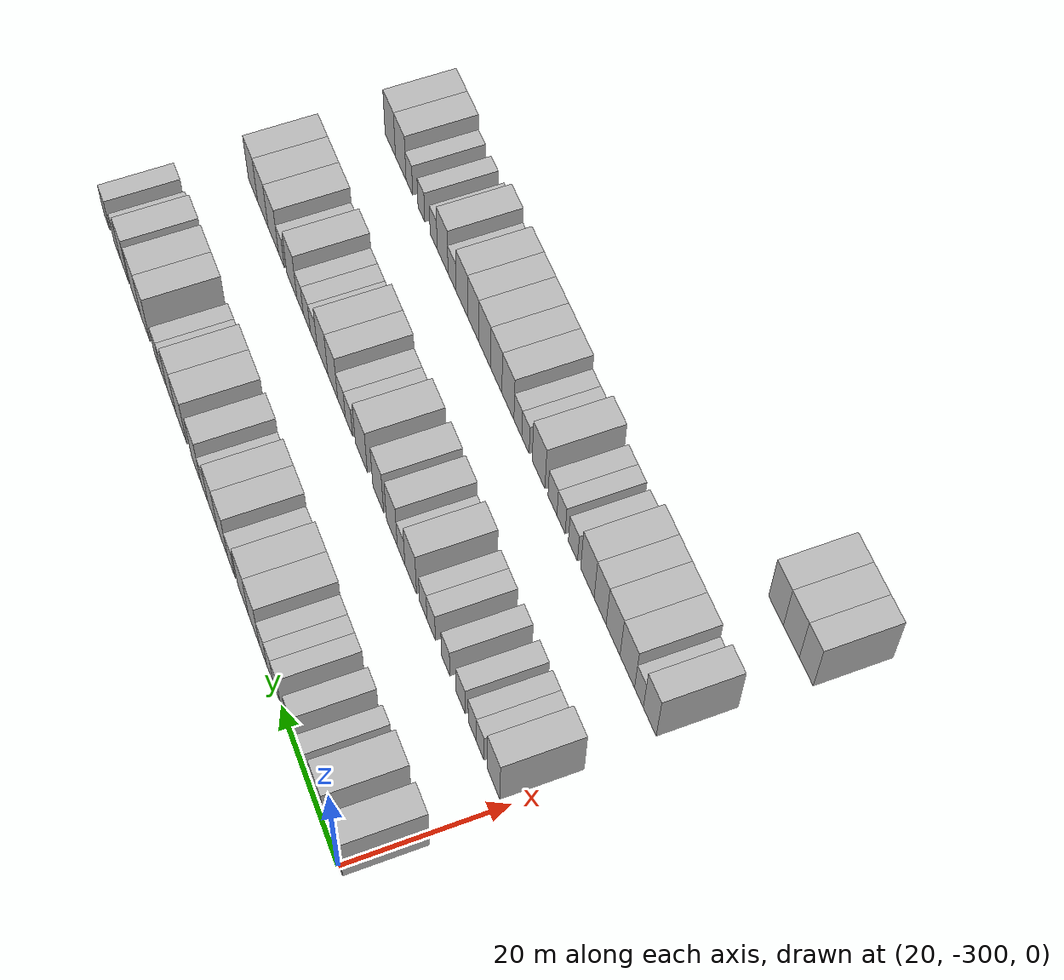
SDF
<sdf version="1.6">
 <world name="default">
  <model name="building_16">
   <static>1</static>
   <pose>25.0000 -299.3112 0 0.000000 0.000000 0.000000</pose>
   <link name="link">
    <pose>0 0 4.50 0 0 0</pose>
    <collision name="collision"><geometry><box><size>10.0000 3.8862 9.0000</size></box></geometry></collision>
    <visual name="visual">
     <cast_shadows>0</cast_shadows>
     <geometry><box><size>10.0000 3.8862 9.0000</size></box></geometry>
     <material>
      <script>
       <uri>model://HANNAS_wall/materials/scripts</uri>
       <uri>model://HANNAS_wall/materials/textures</uri>
       <name>vrc/HANNAS_wall</name>
      </script>
     </material>
    </visual>
   </link>
  </model>
  <model name="building_17">
   <static>1</static>
   <pose>25.0000 -293.1671 0 0.000000 0.000000 0.000000</pose>
   <link name="link">
    <pose>0 0 4.50 0 0 0</pose>
    <collision name="collision"><geometry><box><size>10.0000 4.4021 9.0000</size></box></geometry></collision>
    <visual name="visual">
     <cast_shadows>0</cast_shadows>
     <geometry><box><size>10.0000 4.4021 9.0000</size></box></geometry>
     <material>
      <script>
       <uri>model://HANNAS_wall/materials/scripts</uri>
       <uri>model://HANNAS_wall/materials/textures</uri>
       <name>vrc/HANNAS_wall</name>
      </script>
     </material>
    </visual>
   </link>
  </model>
  <model name="building_18">
   <static>1</static>
   <pose>25.0000 -287.7111 0 0.000000 0.000000 0.000000</pose>
   <link name="link">
    <pose>0 0 3.00 0 0 0</pose>
    <collision name="collision"><geometry><box><size>10.0000 2.5098 6.0000</size></box></geometry></collision>
    <visual name="visual">
     <cast_shadows>0</cast_shadows>
     <geometry><box><size>10.0000 2.5098 6.0000</size></box></geometry>
     <material>
      <script>
       <uri>model://HANNAS_wall/materials/scripts</uri>
       <uri>model://HANNAS_wall/materials/textures</uri>
       <name>vrc/HANNAS_wall</name>
      </script>
     </material>
    </visual>
   </link>
  </model>
  <model name="building_19">
   <static>1</static>
   <pose>25.0000 -283.0220 0 0.000000 0.000000 0.000000</pose>
   <link name="link">
    <pose>0 0 3.00 0 0 0</pose>
    <collision name="collision"><geometry><box><size>10.0000 2.8683 6.0000</size></box></geometry></collision>
    <visual name="visual">
     <cast_shadows>0</cast_shadows>
     <geometry><box><size>10.0000 2.8683 6.0000</size></box></geometry>
     <material>
      <script>
       <uri>model://HANNAS_wall/materials/scripts</uri>
       <uri>model://HANNAS_wall/materials/textures</uri>
       <name>vrc/HANNAS_wall</name>
      </script>
     </material>
    </visual>
   </link>
  </model>
  <model name="building_20">
   <static>1</static>
   <pose>25.0000 -278.3360 0 0.000000 0.000000 0.000000</pose>
   <link name="link">
    <pose>0 0 3.00 0 0 0</pose>
    <collision name="collision"><geometry><box><size>10.0000 2.5036 6.0000</size></box></geometry></collision>
    <visual name="visual">
     <cast_shadows>0</cast_shadows>
     <geometry><box><size>10.0000 2.5036 6.0000</size></box></geometry>
     <material>
      <script>
       <uri>model://HANNAS_wall/materials/scripts</uri>
       <uri>model://HANNAS_wall/materials/textures</uri>
       <name>vrc/HANNAS_wall</name>
      </script>
     </material>
    </visual>
   </link>
  </model>
  <model name="building_21">
   <static>1</static>
   <pose>25.0000 -275.8799 0 0.000000 0.000000 0.000000</pose>
   <link name="link">
    <pose>0 0 3.00 0 0 0</pose>
    <collision name="collision"><geometry><box><size>10.0000 2.4085 6.0000</size></box></geometry></collision>
    <visual name="visual">
     <cast_shadows>0</cast_shadows>
     <geometry><box><size>10.0000 2.4085 6.0000</size></box></geometry>
     <material>
      <script>
       <uri>model://HANNAS_wall/materials/scripts</uri>
       <uri>model://HANNAS_wall/materials/textures</uri>
       <name>vrc/HANNAS_wall</name>
      </script>
     </material>
    </visual>
   </link>
  </model>
  <model name="building_22">
   <static>1</static>
   <pose>25.0000 -273.3234 0 0.000000 0.000000 0.000000</pose>
   <link name="link">
    <pose>0 0 3.00 0 0 0</pose>
    <collision name="collision"><geometry><box><size>10.0000 2.7045 6.0000</size></box></geometry></collision>
    <visual name="visual">
     <cast_shadows>0</cast_shadows>
     <geometry><box><size>10.0000 2.7045 6.0000</size></box></geometry>
     <material>
      <script>
       <uri>model://HANNAS_wall/materials/scripts</uri>
       <uri>model://HANNAS_wall/materials/textures</uri>
       <name>vrc/HANNAS_wall</name>
      </script>
     </material>
    </visual>
   </link>
  </model>
  <model name="building_23">
   <static>1</static>
   <pose>25.0000 -269.9088 0 0.000000 0.000000 0.000000</pose>
   <link name="link">
    <pose>0 0 4.50 0 0 0</pose>
    <collision name="collision"><geometry><box><size>10.0000 4.1248 9.0000</size></box></geometry></collision>
    <visual name="visual">
     <cast_shadows>0</cast_shadows>
     <geometry><box><size>10.0000 4.1248 9.0000</size></box></geometry>
     <material>
      <script>
       <uri>model://HANNAS_wall/materials/scripts</uri>
       <uri>model://HANNAS_wall/materials/textures</uri>
       <name>vrc/HANNAS_wall</name>
      </script>
     </material>
    </visual>
   </link>
  </model>
  <model name="building_24">
   <static>1</static>
   <pose>25.0000 -265.8082 0 0.000000 0.000000 0.000000</pose>
   <link name="link">
    <pose>0 0 4.50 0 0 0</pose>
    <collision name="collision"><geometry><box><size>10.0000 4.0764 9.0000</size></box></geometry></collision>
    <visual name="visual">
     <cast_shadows>0</cast_shadows>
     <geometry><box><size>10.0000 4.0764 9.0000</size></box></geometry>
     <material>
      <script>
       <uri>model://HANNAS_wall/materials/scripts</uri>
       <uri>model://HANNAS_wall/materials/textures</uri>
       <name>vrc/HANNAS_wall</name>
      </script>
     </material>
    </visual>
   </link>
  </model>
  <model name="building_25">
   <static>1</static>
   <pose>25.0000 -261.3336 0 0.000000 0.000000 0.000000</pose>
   <link name="link">
    <pose>0 0 3.00 0 0 0</pose>
    <collision name="collision"><geometry><box><size>10.0000 2.8729 6.0000</size></box></geometry></collision>
    <visual name="visual">
     <cast_shadows>0</cast_shadows>
     <geometry><box><size>10.0000 2.8729 6.0000</size></box></geometry>
     <material>
      <script>
       <uri>model://HANNAS_wall/materials/scripts</uri>
       <uri>model://HANNAS_wall/materials/textures</uri>
       <name>vrc/HANNAS_wall</name>
      </script>
     </material>
    </visual>
   </link>
  </model>
  <model name="building_26">
   <static>1</static>
   <pose>25.0000 -257.8863 0 0.000000 0.000000 0.000000</pose>
   <link name="link">
    <pose>0 0 4.50 0 0 0</pose>
    <collision name="collision"><geometry><box><size>10.0000 4.0216 9.0000</size></box></geometry></collision>
    <visual name="visual">
     <cast_shadows>0</cast_shadows>
     <geometry><box><size>10.0000 4.0216 9.0000</size></box></geometry>
     <material>
      <script>
       <uri>model://HANNAS_wall/materials/scripts</uri>
       <uri>model://HANNAS_wall/materials/textures</uri>
       <name>vrc/HANNAS_wall</name>
      </script>
     </material>
    </visual>
   </link>
  </model>
  <model name="building_27">
   <static>1</static>
   <pose>25.0000 -254.0091 0 0.000000 0.000000 0.000000</pose>
   <link name="link">
    <pose>0 0 4.50 0 0 0</pose>
    <collision name="collision"><geometry><box><size>10.0000 3.7329 9.0000</size></box></geometry></collision>
    <visual name="visual">
     <cast_shadows>0</cast_shadows>
     <geometry><box><size>10.0000 3.7329 9.0000</size></box></geometry>
     <material>
      <script>
       <uri>model://HANNAS_wall/materials/scripts</uri>
       <uri>model://HANNAS_wall/materials/textures</uri>
       <name>vrc/HANNAS_wall</name>
      </script>
     </material>
    </visual>
   </link>
  </model>
  <model name="building_28">
   <static>1</static>
   <pose>25.0000 -250.6905 0 0.000000 0.000000 0.000000</pose>
   <link name="link">
    <pose>0 0 3.00 0 0 0</pose>
    <collision name="collision"><geometry><box><size>10.0000 2.9043 6.0000</size></box></geometry></collision>
    <visual name="visual">
     <cast_shadows>0</cast_shadows>
     <geometry><box><size>10.0000 2.9043 6.0000</size></box></geometry>
     <material>
      <script>
       <uri>model://HANNAS_wall/materials/scripts</uri>
       <uri>model://HANNAS_wall/materials/textures</uri>
       <name>vrc/HANNAS_wall</name>
      </script>
     </material>
    </visual>
   </link>
  </model>
  <model name="building_29">
   <static>1</static>
   <pose>25.0000 -247.3382 0 0.000000 0.000000 0.000000</pose>
   <link name="link">
    <pose>0 0 4.50 0 0 0</pose>
    <collision name="collision"><geometry><box><size>10.0000 3.8004 9.0000</size></box></geometry></collision>
    <visual name="visual">
     <cast_shadows>0</cast_shadows>
     <geometry><box><size>10.0000 3.8004 9.0000</size></box></geometry>
     <material>
      <script>
       <uri>model://HANNAS_wall/materials/scripts</uri>
       <uri>model://HANNAS_wall/materials/textures</uri>
       <name>vrc/HANNAS_wall</name>
      </script>
     </material>
    </visual>
   </link>
  </model>
  <model name="building_30">
   <static>1</static>
   <pose>25.0000 -241.2113 0 0.000000 0.000000 0.000000</pose>
   <link name="link">
    <pose>0 0 4.50 0 0 0</pose>
    <collision name="collision"><geometry><box><size>10.0000 4.4534 9.0000</size></box></geometry></collision>
    <visual name="visual">
     <cast_shadows>0</cast_shadows>
     <geometry><box><size>10.0000 4.4534 9.0000</size></box></geometry>
     <material>
      <script>
       <uri>model://HANNAS_wall/materials/scripts</uri>
       <uri>model://HANNAS_wall/materials/textures</uri>
       <name>vrc/HANNAS_wall</name>
      </script>
     </material>
    </visual>
   </link>
  </model>
  <model name="building_31">
   <static>1</static>
   <pose>25.0000 -237.0478 0 0.000000 0.000000 0.000000</pose>
   <link name="link">
    <pose>0 0 4.50 0 0 0</pose>
    <collision name="collision"><geometry><box><size>10.0000 3.8735 9.0000</size></box></geometry></collision>
    <visual name="visual">
     <cast_shadows>0</cast_shadows>
     <geometry><box><size>10.0000 3.8735 9.0000</size></box></geometry>
     <material>
      <script>
       <uri>model://HANNAS_wall/materials/scripts</uri>
       <uri>model://HANNAS_wall/materials/textures</uri>
       <name>vrc/HANNAS_wall</name>
      </script>
     </material>
    </visual>
   </link>
  </model>
  <model name="building_32">
   <static>1</static>
   <pose>25.0000 -233.6529 0 0.000000 0.000000 0.000000</pose>
   <link name="link">
    <pose>0 0 3.00 0 0 0</pose>
    <collision name="collision"><geometry><box><size>10.0000 2.9162 6.0000</size></box></geometry></collision>
    <visual name="visual">
     <cast_shadows>0</cast_shadows>
     <geometry><box><size>10.0000 2.9162 6.0000</size></box></geometry>
     <material>
      <script>
       <uri>model://HANNAS_wall/materials/scripts</uri>
       <uri>model://HANNAS_wall/materials/textures</uri>
       <name>vrc/HANNAS_wall</name>
      </script>
     </material>
    </visual>
   </link>
  </model>
  <model name="building_33">
   <static>1</static>
   <pose>25.0000 -230.9695 0 0.000000 0.000000 0.000000</pose>
   <link name="link">
    <pose>0 0 3.00 0 0 0</pose>
    <collision name="collision"><geometry><box><size>10.0000 2.4507 6.0000</size></box></geometry></collision>
    <visual name="visual">
     <cast_shadows>0</cast_shadows>
     <geometry><box><size>10.0000 2.4507 6.0000</size></box></geometry>
     <material>
      <script>
       <uri>model://HANNAS_wall/materials/scripts</uri>
       <uri>model://HANNAS_wall/materials/textures</uri>
       <name>vrc/HANNAS_wall</name>
      </script>
     </material>
    </visual>
   </link>
  </model>
  <model name="building_34">
   <static>1</static>
   <pose>25.0000 -225.7912 0 0.000000 0.000000 0.000000</pose>
   <link name="link">
    <pose>0 0 4.50 0 0 0</pose>
    <collision name="collision"><geometry><box><size>10.0000 3.9059 9.0000</size></box></geometry></collision>
    <visual name="visual">
     <cast_shadows>0</cast_shadows>
     <geometry><box><size>10.0000 3.9059 9.0000</size></box></geometry>
     <material>
      <script>
       <uri>model://HANNAS_wall/materials/scripts</uri>
       <uri>model://HANNAS_wall/materials/textures</uri>
       <name>vrc/HANNAS_wall</name>
      </script>
     </material>
    </visual>
   </link>
  </model>
  <model name="building_35">
   <static>1</static>
   <pose>25.0000 -221.6603 0 0.000000 0.000000 0.000000</pose>
   <link name="link">
    <pose>0 0 4.50 0 0 0</pose>
    <collision name="collision"><geometry><box><size>10.0000 4.3558 9.0000</size></box></geometry></collision>
    <visual name="visual">
     <cast_shadows>0</cast_shadows>
     <geometry><box><size>10.0000 4.3558 9.0000</size></box></geometry>
     <material>
      <script>
       <uri>model://HANNAS_wall/materials/scripts</uri>
       <uri>model://HANNAS_wall/materials/textures</uri>
       <name>vrc/HANNAS_wall</name>
      </script>
     </material>
    </visual>
   </link>
  </model>
  <model name="building_36">
   <static>1</static>
   <pose>25.0000 -216.5429 0 0.000000 0.000000 0.000000</pose>
   <link name="link">
    <pose>0 0 4.50 0 0 0</pose>
    <collision name="collision"><geometry><box><size>10.0000 3.8790 9.0000</size></box></geometry></collision>
    <visual name="visual">
     <cast_shadows>0</cast_shadows>
     <geometry><box><size>10.0000 3.8790 9.0000</size></box></geometry>
     <material>
      <script>
       <uri>model://HANNAS_wall/materials/scripts</uri>
       <uri>model://HANNAS_wall/materials/textures</uri>
       <name>vrc/HANNAS_wall</name>
      </script>
     </material>
    </visual>
   </link>
  </model>
  <model name="building_37">
   <static>1</static>
   <pose>25.0000 -213.1179 0 0.000000 0.000000 0.000000</pose>
   <link name="link">
    <pose>0 0 3.00 0 0 0</pose>
    <collision name="collision"><geometry><box><size>10.0000 2.9709 6.0000</size></box></geometry></collision>
    <visual name="visual">
     <cast_shadows>0</cast_shadows>
     <geometry><box><size>10.0000 2.9709 6.0000</size></box></geometry>
     <material>
      <script>
       <uri>model://HANNAS_wall/materials/scripts</uri>
       <uri>model://HANNAS_wall/materials/textures</uri>
       <name>vrc/HANNAS_wall</name>
      </script>
     </material>
    </visual>
   </link>
  </model>
  <model name="building_38">
   <static>1</static>
   <pose>25.0000 -208.2390 0 0.000000 0.000000 0.000000</pose>
   <link name="link">
    <pose>0 0 3.00 0 0 0</pose>
    <collision name="collision"><geometry><box><size>10.0000 2.7869 6.0000</size></box></geometry></collision>
    <visual name="visual">
     <cast_shadows>0</cast_shadows>
     <geometry><box><size>10.0000 2.7869 6.0000</size></box></geometry>
     <material>
      <script>
       <uri>model://HANNAS_wall/materials/scripts</uri>
       <uri>model://HANNAS_wall/materials/textures</uri>
       <name>vrc/HANNAS_wall</name>
      </script>
     </material>
    </visual>
   </link>
  </model>
  <model name="building_186">
   <static>1</static>
   <pose>44.0000 -297.0724 0 0.000000 0.000000 0.000000</pose>
   <link name="link">
    <pose>0 0 4.50 0 0 0</pose>
    <collision name="collision"><geometry><box><size>10.0000 3.9148 9.0000</size></box></geometry></collision>
    <visual name="visual">
     <cast_shadows>0</cast_shadows>
     <geometry><box><size>10.0000 3.9148 9.0000</size></box></geometry>
     <material>
      <script>
       <uri>model://HANNAS_wall/materials/scripts</uri>
       <uri>model://HANNAS_wall/materials/textures</uri>
       <name>vrc/HANNAS_wall</name>
      </script>
     </material>
    </visual>
   </link>
  </model>
  <model name="building_187">
   <static>1</static>
   <pose>44.0000 -292.9127 0 0.000000 0.000000 0.000000</pose>
   <link name="link">
    <pose>0 0 3.00 0 0 0</pose>
    <collision name="collision"><geometry><box><size>10.0000 2.4045 6.0000</size></box></geometry></collision>
    <visual name="visual">
     <cast_shadows>0</cast_shadows>
     <geometry><box><size>10.0000 2.4045 6.0000</size></box></geometry>
     <material>
      <script>
       <uri>model://HANNAS_wall/materials/scripts</uri>
       <uri>model://HANNAS_wall/materials/textures</uri>
       <name>vrc/HANNAS_wall</name>
      </script>
     </material>
    </visual>
   </link>
  </model>
  <model name="building_188">
   <static>1</static>
   <pose>44.0000 -290.4183 0 0.000000 0.000000 0.000000</pose>
   <link name="link">
    <pose>0 0 3.00 0 0 0</pose>
    <collision name="collision"><geometry><box><size>10.0000 2.5843 6.0000</size></box></geometry></collision>
    <visual name="visual">
     <cast_shadows>0</cast_shadows>
     <geometry><box><size>10.0000 2.5843 6.0000</size></box></geometry>
     <material>
      <script>
       <uri>model://HANNAS_wall/materials/scripts</uri>
       <uri>model://HANNAS_wall/materials/textures</uri>
       <name>vrc/HANNAS_wall</name>
      </script>
     </material>
    </visual>
   </link>
  </model>
  <model name="building_189">
   <static>1</static>
   <pose>44.0000 -286.6588 0 0.000000 0.000000 0.000000</pose>
   <link name="link">
    <pose>0 0 3.00 0 0 0</pose>
    <collision name="collision"><geometry><box><size>10.0000 2.9347 6.0000</size></box></geometry></collision>
    <visual name="visual">
     <cast_shadows>0</cast_shadows>
     <geometry><box><size>10.0000 2.9347 6.0000</size></box></geometry>
     <material>
      <script>
       <uri>model://HANNAS_wall/materials/scripts</uri>
       <uri>model://HANNAS_wall/materials/textures</uri>
       <name>vrc/HANNAS_wall</name>
      </script>
     </material>
    </visual>
   </link>
  </model>
  <model name="building_190">
   <static>1</static>
   <pose>44.0000 -281.8117 0 0.000000 0.000000 0.000000</pose>
   <link name="link">
    <pose>0 0 3.00 0 0 0</pose>
    <collision name="collision"><geometry><box><size>10.0000 2.7596 6.0000</size></box></geometry></collision>
    <visual name="visual">
     <cast_shadows>0</cast_shadows>
     <geometry><box><size>10.0000 2.7596 6.0000</size></box></geometry>
     <material>
      <script>
       <uri>model://HANNAS_wall/materials/scripts</uri>
       <uri>model://HANNAS_wall/materials/textures</uri>
       <name>vrc/HANNAS_wall</name>
      </script>
     </material>
    </visual>
   </link>
  </model>
  <model name="building_191">
   <static>1</static>
   <pose>44.0000 -277.0166 0 0.000000 0.000000 0.000000</pose>
   <link name="link">
    <pose>0 0 3.00 0 0 0</pose>
    <collision name="collision"><geometry><box><size>10.0000 2.8305 6.0000</size></box></geometry></collision>
    <visual name="visual">
     <cast_shadows>0</cast_shadows>
     <geometry><box><size>10.0000 2.8305 6.0000</size></box></geometry>
     <material>
      <script>
       <uri>model://HANNAS_wall/materials/scripts</uri>
       <uri>model://HANNAS_wall/materials/textures</uri>
       <name>vrc/HANNAS_wall</name>
      </script>
     </material>
    </visual>
   </link>
  </model>
  <model name="building_192">
   <static>1</static>
   <pose>44.0000 -274.3467 0 0.000000 0.000000 0.000000</pose>
   <link name="link">
    <pose>0 0 3.00 0 0 0</pose>
    <collision name="collision"><geometry><box><size>10.0000 2.5095 6.0000</size></box></geometry></collision>
    <visual name="visual">
     <cast_shadows>0</cast_shadows>
     <geometry><box><size>10.0000 2.5095 6.0000</size></box></geometry>
     <material>
      <script>
       <uri>model://HANNAS_wall/materials/scripts</uri>
       <uri>model://HANNAS_wall/materials/textures</uri>
       <name>vrc/HANNAS_wall</name>
      </script>
     </material>
    </visual>
   </link>
  </model>
  <model name="building_193">
   <static>1</static>
   <pose>44.0000 -270.0908 0 0.000000 0.000000 0.000000</pose>
   <link name="link">
    <pose>0 0 4.50 0 0 0</pose>
    <collision name="collision"><geometry><box><size>10.0000 4.0023 9.0000</size></box></geometry></collision>
    <visual name="visual">
     <cast_shadows>0</cast_shadows>
     <geometry><box><size>10.0000 4.0023 9.0000</size></box></geometry>
     <material>
      <script>
       <uri>model://HANNAS_wall/materials/scripts</uri>
       <uri>model://HANNAS_wall/materials/textures</uri>
       <name>vrc/HANNAS_wall</name>
      </script>
     </material>
    </visual>
   </link>
  </model>
  <model name="building_194">
   <static>1</static>
   <pose>44.0000 -266.7684 0 0.000000 0.000000 0.000000</pose>
   <link name="link">
    <pose>0 0 3.00 0 0 0</pose>
    <collision name="collision"><geometry><box><size>10.0000 2.6424 6.0000</size></box></geometry></collision>
    <visual name="visual">
     <cast_shadows>0</cast_shadows>
     <geometry><box><size>10.0000 2.6424 6.0000</size></box></geometry>
     <material>
      <script>
       <uri>model://HANNAS_wall/materials/scripts</uri>
       <uri>model://HANNAS_wall/materials/textures</uri>
       <name>vrc/HANNAS_wall</name>
      </script>
     </material>
    </visual>
   </link>
  </model>
  <model name="building_195">
   <static>1</static>
   <pose>44.0000 -263.5524 0 0.000000 0.000000 0.000000</pose>
   <link name="link">
    <pose>0 0 4.50 0 0 0</pose>
    <collision name="collision"><geometry><box><size>10.0000 3.7895 9.0000</size></box></geometry></collision>
    <visual name="visual">
     <cast_shadows>0</cast_shadows>
     <geometry><box><size>10.0000 3.7895 9.0000</size></box></geometry>
     <material>
      <script>
       <uri>model://HANNAS_wall/materials/scripts</uri>
       <uri>model://HANNAS_wall/materials/textures</uri>
       <name>vrc/HANNAS_wall</name>
      </script>
     </material>
    </visual>
   </link>
  </model>
  <model name="building_196">
   <static>1</static>
   <pose>44.0000 -258.7288 0 0.000000 0.000000 0.000000</pose>
   <link name="link">
    <pose>0 0 4.50 0 0 0</pose>
    <collision name="collision"><geometry><box><size>10.0000 3.8577 9.0000</size></box></geometry></collision>
    <visual name="visual">
     <cast_shadows>0</cast_shadows>
     <geometry><box><size>10.0000 3.8577 9.0000</size></box></geometry>
     <material>
      <script>
       <uri>model://HANNAS_wall/materials/scripts</uri>
       <uri>model://HANNAS_wall/materials/textures</uri>
       <name>vrc/HANNAS_wall</name>
      </script>
     </material>
    </visual>
   </link>
  </model>
  <model name="building_197">
   <static>1</static>
   <pose>44.0000 -252.6129 0 0.000000 0.000000 0.000000</pose>
   <link name="link">
    <pose>0 0 4.50 0 0 0</pose>
    <collision name="collision"><geometry><box><size>10.0000 4.3741 9.0000</size></box></geometry></collision>
    <visual name="visual">
     <cast_shadows>0</cast_shadows>
     <geometry><box><size>10.0000 4.3741 9.0000</size></box></geometry>
     <material>
      <script>
       <uri>model://HANNAS_wall/materials/scripts</uri>
       <uri>model://HANNAS_wall/materials/textures</uri>
       <name>vrc/HANNAS_wall</name>
      </script>
     </material>
    </visual>
   </link>
  </model>
  <model name="building_198">
   <static>1</static>
   <pose>44.0000 -248.0777 0 0.000000 0.000000 0.000000</pose>
   <link name="link">
    <pose>0 0 3.00 0 0 0</pose>
    <collision name="collision"><geometry><box><size>10.0000 2.6964 6.0000</size></box></geometry></collision>
    <visual name="visual">
     <cast_shadows>0</cast_shadows>
     <geometry><box><size>10.0000 2.6964 6.0000</size></box></geometry>
     <material>
      <script>
       <uri>model://HANNAS_wall/materials/scripts</uri>
       <uri>model://HANNAS_wall/materials/textures</uri>
       <name>vrc/HANNAS_wall</name>
      </script>
     </material>
    </visual>
   </link>
  </model>
  <model name="building_199">
   <static>1</static>
   <pose>44.0000 -245.2805 0 0.000000 0.000000 0.000000</pose>
   <link name="link">
    <pose>0 0 3.00 0 0 0</pose>
    <collision name="collision"><geometry><box><size>10.0000 2.8980 6.0000</size></box></geometry></collision>
    <visual name="visual">
     <cast_shadows>0</cast_shadows>
     <geometry><box><size>10.0000 2.8980 6.0000</size></box></geometry>
     <material>
      <script>
       <uri>model://HANNAS_wall/materials/scripts</uri>
       <uri>model://HANNAS_wall/materials/textures</uri>
       <name>vrc/HANNAS_wall</name>
      </script>
     </material>
    </visual>
   </link>
  </model>
  <model name="building_200">
   <static>1</static>
   <pose>44.0000 -241.9789 0 0.000000 0.000000 0.000000</pose>
   <link name="link">
    <pose>0 0 4.50 0 0 0</pose>
    <collision name="collision"><geometry><box><size>10.0000 3.7052 9.0000</size></box></geometry></collision>
    <visual name="visual">
     <cast_shadows>0</cast_shadows>
     <geometry><box><size>10.0000 3.7052 9.0000</size></box></geometry>
     <material>
      <script>
       <uri>model://HANNAS_wall/materials/scripts</uri>
       <uri>model://HANNAS_wall/materials/textures</uri>
       <name>vrc/HANNAS_wall</name>
      </script>
     </material>
    </visual>
   </link>
  </model>
  <model name="building_201">
   <static>1</static>
   <pose>44.0000 -238.1013 0 0.000000 0.000000 0.000000</pose>
   <link name="link">
    <pose>0 0 4.50 0 0 0</pose>
    <collision name="collision"><geometry><box><size>10.0000 4.0499 9.0000</size></box></geometry></collision>
    <visual name="visual">
     <cast_shadows>0</cast_shadows>
     <geometry><box><size>10.0000 4.0499 9.0000</size></box></geometry>
     <material>
      <script>
       <uri>model://HANNAS_wall/materials/scripts</uri>
       <uri>model://HANNAS_wall/materials/textures</uri>
       <name>vrc/HANNAS_wall</name>
      </script>
     </material>
    </visual>
   </link>
  </model>
  <model name="building_202">
   <static>1</static>
   <pose>44.0000 -234.7181 0 0.000000 0.000000 0.000000</pose>
   <link name="link">
    <pose>0 0 3.00 0 0 0</pose>
    <collision name="collision"><geometry><box><size>10.0000 2.7165 6.0000</size></box></geometry></collision>
    <visual name="visual">
     <cast_shadows>0</cast_shadows>
     <geometry><box><size>10.0000 2.7165 6.0000</size></box></geometry>
     <material>
      <script>
       <uri>model://HANNAS_wall/materials/scripts</uri>
       <uri>model://HANNAS_wall/materials/textures</uri>
       <name>vrc/HANNAS_wall</name>
      </script>
     </material>
    </visual>
   </link>
  </model>
  <model name="building_203">
   <static>1</static>
   <pose>44.0000 -231.9727 0 0.000000 0.000000 0.000000</pose>
   <link name="link">
    <pose>0 0 3.00 0 0 0</pose>
    <collision name="collision"><geometry><box><size>10.0000 2.7742 6.0000</size></box></geometry></collision>
    <visual name="visual">
     <cast_shadows>0</cast_shadows>
     <geometry><box><size>10.0000 2.7742 6.0000</size></box></geometry>
     <material>
      <script>
       <uri>model://HANNAS_wall/materials/scripts</uri>
       <uri>model://HANNAS_wall/materials/textures</uri>
       <name>vrc/HANNAS_wall</name>
      </script>
     </material>
    </visual>
   </link>
  </model>
  <model name="building_204">
   <static>1</static>
   <pose>44.0000 -229.3136 0 0.000000 0.000000 0.000000</pose>
   <link name="link">
    <pose>0 0 3.00 0 0 0</pose>
    <collision name="collision"><geometry><box><size>10.0000 2.5441 6.0000</size></box></geometry></collision>
    <visual name="visual">
     <cast_shadows>0</cast_shadows>
     <geometry><box><size>10.0000 2.5441 6.0000</size></box></geometry>
     <material>
      <script>
       <uri>model://HANNAS_wall/materials/scripts</uri>
       <uri>model://HANNAS_wall/materials/textures</uri>
       <name>vrc/HANNAS_wall</name>
      </script>
     </material>
    </visual>
   </link>
  </model>
  <model name="building_205">
   <static>1</static>
   <pose>44.0000 -226.0369 0 0.000000 0.000000 0.000000</pose>
   <link name="link">
    <pose>0 0 4.50 0 0 0</pose>
    <collision name="collision"><geometry><box><size>10.0000 4.0094 9.0000</size></box></geometry></collision>
    <visual name="visual">
     <cast_shadows>0</cast_shadows>
     <geometry><box><size>10.0000 4.0094 9.0000</size></box></geometry>
     <material>
      <script>
       <uri>model://HANNAS_wall/materials/scripts</uri>
       <uri>model://HANNAS_wall/materials/textures</uri>
       <name>vrc/HANNAS_wall</name>
      </script>
     </material>
    </visual>
   </link>
  </model>
  <model name="building_206">
   <static>1</static>
   <pose>44.0000 -221.8279 0 0.000000 0.000000 0.000000</pose>
   <link name="link">
    <pose>0 0 3.00 0 0 0</pose>
    <collision name="collision"><geometry><box><size>10.0000 2.4086 6.0000</size></box></geometry></collision>
    <visual name="visual">
     <cast_shadows>0</cast_shadows>
     <geometry><box><size>10.0000 2.4086 6.0000</size></box></geometry>
     <material>
      <script>
       <uri>model://HANNAS_wall/materials/scripts</uri>
       <uri>model://HANNAS_wall/materials/textures</uri>
       <name>vrc/HANNAS_wall</name>
      </script>
     </material>
    </visual>
   </link>
  </model>
  <model name="building_207">
   <static>1</static>
   <pose>44.0000 -218.4927 0 0.000000 0.000000 0.000000</pose>
   <link name="link">
    <pose>0 0 4.50 0 0 0</pose>
    <collision name="collision"><geometry><box><size>10.0000 4.2618 9.0000</size></box></geometry></collision>
    <visual name="visual">
     <cast_shadows>0</cast_shadows>
     <geometry><box><size>10.0000 4.2618 9.0000</size></box></geometry>
     <material>
      <script>
       <uri>model://HANNAS_wall/materials/scripts</uri>
       <uri>model://HANNAS_wall/materials/textures</uri>
       <name>vrc/HANNAS_wall</name>
      </script>
     </material>
    </visual>
   </link>
  </model>
  <model name="building_208">
   <static>1</static>
   <pose>44.0000 -214.1776 0 0.000000 0.000000 0.000000</pose>
   <link name="link">
    <pose>0 0 4.50 0 0 0</pose>
    <collision name="collision"><geometry><box><size>10.0000 4.3684 9.0000</size></box></geometry></collision>
    <visual name="visual">
     <cast_shadows>0</cast_shadows>
     <geometry><box><size>10.0000 4.3684 9.0000</size></box></geometry>
     <material>
      <script>
       <uri>model://HANNAS_wall/materials/scripts</uri>
       <uri>model://HANNAS_wall/materials/textures</uri>
       <name>vrc/HANNAS_wall</name>
      </script>
     </material>
    </visual>
   </link>
  </model>
  <model name="building_209">
   <static>1</static>
   <pose>44.0000 -210.0485 0 0.000000 0.000000 0.000000</pose>
   <link name="link">
    <pose>0 0 4.50 0 0 0</pose>
    <collision name="collision"><geometry><box><size>10.0000 3.8898 9.0000</size></box></geometry></collision>
    <visual name="visual">
     <cast_shadows>0</cast_shadows>
     <geometry><box><size>10.0000 3.8898 9.0000</size></box></geometry>
     <material>
      <script>
       <uri>model://HANNAS_wall/materials/scripts</uri>
       <uri>model://HANNAS_wall/materials/textures</uri>
       <name>vrc/HANNAS_wall</name>
      </script>
     </material>
    </visual>
   </link>
  </model>
  <model name="building_347">
   <static>1</static>
   <pose>63.0000 -296.3301 0 0.000000 0.000000 0.000000</pose>
   <link name="link">
    <pose>0 0 4.50 0 0 0</pose>
    <collision name="collision"><geometry><box><size>10.0000 3.7104 9.0000</size></box></geometry></collision>
    <visual name="visual">
     <cast_shadows>0</cast_shadows>
     <geometry><box><size>10.0000 3.7104 9.0000</size></box></geometry>
     <material>
      <script>
       <uri>model://HANNAS_wall/materials/scripts</uri>
       <uri>model://HANNAS_wall/materials/textures</uri>
       <name>vrc/HANNAS_wall</name>
      </script>
     </material>
    </visual>
   </link>
  </model>
  <model name="building_348">
   <static>1</static>
   <pose>63.0000 -293.1950 0 0.000000 0.000000 0.000000</pose>
   <link name="link">
    <pose>0 0 3.00 0 0 0</pose>
    <collision name="collision"><geometry><box><size>10.0000 2.5598 6.0000</size></box></geometry></collision>
    <visual name="visual">
     <cast_shadows>0</cast_shadows>
     <geometry><box><size>10.0000 2.5598 6.0000</size></box></geometry>
     <material>
      <script>
       <uri>model://HANNAS_wall/materials/scripts</uri>
       <uri>model://HANNAS_wall/materials/textures</uri>
       <name>vrc/HANNAS_wall</name>
      </script>
     </material>
    </visual>
   </link>
  </model>
  <model name="building_349">
   <static>1</static>
   <pose>63.0000 -289.7762 0 0.000000 0.000000 0.000000</pose>
   <link name="link">
    <pose>0 0 4.50 0 0 0</pose>
    <collision name="collision"><geometry><box><size>10.0000 4.2778 9.0000</size></box></geometry></collision>
    <visual name="visual">
     <cast_shadows>0</cast_shadows>
     <geometry><box><size>10.0000 4.2778 9.0000</size></box></geometry>
     <material>
      <script>
       <uri>model://HANNAS_wall/materials/scripts</uri>
       <uri>model://HANNAS_wall/materials/textures</uri>
       <name>vrc/HANNAS_wall</name>
      </script>
     </material>
    </visual>
   </link>
  </model>
  <model name="building_350">
   <static>1</static>
   <pose>63.0000 -285.5443 0 0.000000 0.000000 0.000000</pose>
   <link name="link">
    <pose>0 0 4.50 0 0 0</pose>
    <collision name="collision"><geometry><box><size>10.0000 4.1861 9.0000</size></box></geometry></collision>
    <visual name="visual">
     <cast_shadows>0</cast_shadows>
     <geometry><box><size>10.0000 4.1861 9.0000</size></box></geometry>
     <material>
      <script>
       <uri>model://HANNAS_wall/materials/scripts</uri>
       <uri>model://HANNAS_wall/materials/textures</uri>
       <name>vrc/HANNAS_wall</name>
      </script>
     </material>
    </visual>
   </link>
  </model>
  <model name="building_351">
   <static>1</static>
   <pose>63.0000 -281.6368 0 0.000000 0.000000 0.000000</pose>
   <link name="link">
    <pose>0 0 4.50 0 0 0</pose>
    <collision name="collision"><geometry><box><size>10.0000 3.6289 9.0000</size></box></geometry></collision>
    <visual name="visual">
     <cast_shadows>0</cast_shadows>
     <geometry><box><size>10.0000 3.6289 9.0000</size></box></geometry>
     <material>
      <script>
       <uri>model://HANNAS_wall/materials/scripts</uri>
       <uri>model://HANNAS_wall/materials/textures</uri>
       <name>vrc/HANNAS_wall</name>
      </script>
     </material>
    </visual>
   </link>
  </model>
  <model name="building_352">
   <static>1</static>
   <pose>63.0000 -277.7466 0 0.000000 0.000000 0.000000</pose>
   <link name="link">
    <pose>0 0 4.50 0 0 0</pose>
    <collision name="collision"><geometry><box><size>10.0000 4.1515 9.0000</size></box></geometry></collision>
    <visual name="visual">
     <cast_shadows>0</cast_shadows>
     <geometry><box><size>10.0000 4.1515 9.0000</size></box></geometry>
     <material>
      <script>
       <uri>model://HANNAS_wall/materials/scripts</uri>
       <uri>model://HANNAS_wall/materials/textures</uri>
       <name>vrc/HANNAS_wall</name>
      </script>
     </material>
    </visual>
   </link>
  </model>
  <model name="building_353">
   <static>1</static>
   <pose>63.0000 -273.2471 0 0.000000 0.000000 0.000000</pose>
   <link name="link">
    <pose>0 0 3.00 0 0 0</pose>
    <collision name="collision"><geometry><box><size>10.0000 2.8475 6.0000</size></box></geometry></collision>
    <visual name="visual">
     <cast_shadows>0</cast_shadows>
     <geometry><box><size>10.0000 2.8475 6.0000</size></box></geometry>
     <material>
      <script>
       <uri>model://HANNAS_wall/materials/scripts</uri>
       <uri>model://HANNAS_wall/materials/textures</uri>
       <name>vrc/HANNAS_wall</name>
      </script>
     </material>
    </visual>
   </link>
  </model>
  <model name="building_354">
   <static>1</static>
   <pose>63.0000 -269.5104 0 0.000000 0.000000 0.000000</pose>
   <link name="link">
    <pose>0 0 3.00 0 0 0</pose>
    <collision name="collision"><geometry><box><size>10.0000 2.6258 6.0000</size></box></geometry></collision>
    <visual name="visual">
     <cast_shadows>0</cast_shadows>
     <geometry><box><size>10.0000 2.6258 6.0000</size></box></geometry>
     <material>
      <script>
       <uri>model://HANNAS_wall/materials/scripts</uri>
       <uri>model://HANNAS_wall/materials/textures</uri>
       <name>vrc/HANNAS_wall</name>
      </script>
     </material>
    </visual>
   </link>
  </model>
  <model name="building_355">
   <static>1</static>
   <pose>63.0000 -266.7639 0 0.000000 0.000000 0.000000</pose>
   <link name="link">
    <pose>0 0 3.00 0 0 0</pose>
    <collision name="collision"><geometry><box><size>10.0000 2.8672 6.0000</size></box></geometry></collision>
    <visual name="visual">
     <cast_shadows>0</cast_shadows>
     <geometry><box><size>10.0000 2.8672 6.0000</size></box></geometry>
     <material>
      <script>
       <uri>model://HANNAS_wall/materials/scripts</uri>
       <uri>model://HANNAS_wall/materials/textures</uri>
       <name>vrc/HANNAS_wall</name>
      </script>
     </material>
    </visual>
   </link>
  </model>
  <model name="building_356">
   <static>1</static>
   <pose>63.0000 -262.2448 0 0.000000 0.000000 0.000000</pose>
   <link name="link">
    <pose>0 0 4.50 0 0 0</pose>
    <collision name="collision"><geometry><box><size>10.0000 4.1710 9.0000</size></box></geometry></collision>
    <visual name="visual">
     <cast_shadows>0</cast_shadows>
     <geometry><box><size>10.0000 4.1710 9.0000</size></box></geometry>
     <material>
      <script>
       <uri>model://HANNAS_wall/materials/scripts</uri>
       <uri>model://HANNAS_wall/materials/textures</uri>
       <name>vrc/HANNAS_wall</name>
      </script>
     </material>
    </visual>
   </link>
  </model>
  <model name="building_357">
   <static>1</static>
   <pose>63.0000 -257.9415 0 0.000000 0.000000 0.000000</pose>
   <link name="link">
    <pose>0 0 3.00 0 0 0</pose>
    <collision name="collision"><geometry><box><size>10.0000 2.4357 6.0000</size></box></geometry></collision>
    <visual name="visual">
     <cast_shadows>0</cast_shadows>
     <geometry><box><size>10.0000 2.4357 6.0000</size></box></geometry>
     <material>
      <script>
       <uri>model://HANNAS_wall/materials/scripts</uri>
       <uri>model://HANNAS_wall/materials/textures</uri>
       <name>vrc/HANNAS_wall</name>
      </script>
     </material>
    </visual>
   </link>
  </model>
  <model name="building_358">
   <static>1</static>
   <pose>63.0000 -255.4191 0 0.000000 0.000000 0.000000</pose>
   <link name="link">
    <pose>0 0 3.00 0 0 0</pose>
    <collision name="collision"><geometry><box><size>10.0000 2.6091 6.0000</size></box></geometry></collision>
    <visual name="visual">
     <cast_shadows>0</cast_shadows>
     <geometry><box><size>10.0000 2.6091 6.0000</size></box></geometry>
     <material>
      <script>
       <uri>model://HANNAS_wall/materials/scripts</uri>
       <uri>model://HANNAS_wall/materials/textures</uri>
       <name>vrc/HANNAS_wall</name>
      </script>
     </material>
    </visual>
   </link>
  </model>
  <model name="building_359">
   <static>1</static>
   <pose>63.0000 -252.0746 0 0.000000 0.000000 0.000000</pose>
   <link name="link">
    <pose>0 0 4.50 0 0 0</pose>
    <collision name="collision"><geometry><box><size>10.0000 4.0799 9.0000</size></box></geometry></collision>
    <visual name="visual">
     <cast_shadows>0</cast_shadows>
     <geometry><box><size>10.0000 4.0799 9.0000</size></box></geometry>
     <material>
      <script>
       <uri>model://HANNAS_wall/materials/scripts</uri>
       <uri>model://HANNAS_wall/materials/textures</uri>
       <name>vrc/HANNAS_wall</name>
      </script>
     </material>
    </visual>
   </link>
  </model>
  <model name="building_360">
   <static>1</static>
   <pose>63.0000 -248.0978 0 0.000000 0.000000 0.000000</pose>
   <link name="link">
    <pose>0 0 4.50 0 0 0</pose>
    <collision name="collision"><geometry><box><size>10.0000 3.8737 9.0000</size></box></geometry></collision>
    <visual name="visual">
     <cast_shadows>0</cast_shadows>
     <geometry><box><size>10.0000 3.8737 9.0000</size></box></geometry>
     <material>
      <script>
       <uri>model://HANNAS_wall/materials/scripts</uri>
       <uri>model://HANNAS_wall/materials/textures</uri>
       <name>vrc/HANNAS_wall</name>
      </script>
     </material>
    </visual>
   </link>
  </model>
  <model name="building_361">
   <static>1</static>
   <pose>63.0000 -244.0897 0 0.000000 0.000000 0.000000</pose>
   <link name="link">
    <pose>0 0 4.50 0 0 0</pose>
    <collision name="collision"><geometry><box><size>10.0000 4.1426 9.0000</size></box></geometry></collision>
    <visual name="visual">
     <cast_shadows>0</cast_shadows>
     <geometry><box><size>10.0000 4.1426 9.0000</size></box></geometry>
     <material>
      <script>
       <uri>model://HANNAS_wall/materials/scripts</uri>
       <uri>model://HANNAS_wall/materials/textures</uri>
       <name>vrc/HANNAS_wall</name>
      </script>
     </material>
    </visual>
   </link>
  </model>
  <model name="building_362">
   <static>1</static>
   <pose>63.0000 -240.0663 0 0.000000 0.000000 0.000000</pose>
   <link name="link">
    <pose>0 0 4.50 0 0 0</pose>
    <collision name="collision"><geometry><box><size>10.0000 3.9042 9.0000</size></box></geometry></collision>
    <visual name="visual">
     <cast_shadows>0</cast_shadows>
     <geometry><box><size>10.0000 3.9042 9.0000</size></box></geometry>
     <material>
      <script>
       <uri>model://HANNAS_wall/materials/scripts</uri>
       <uri>model://HANNAS_wall/materials/textures</uri>
       <name>vrc/HANNAS_wall</name>
      </script>
     </material>
    </visual>
   </link>
  </model>
  <model name="building_363">
   <static>1</static>
   <pose>63.0000 -236.0813 0 0.000000 0.000000 0.000000</pose>
   <link name="link">
    <pose>0 0 4.50 0 0 0</pose>
    <collision name="collision"><geometry><box><size>10.0000 4.0657 9.0000</size></box></geometry></collision>
    <visual name="visual">
     <cast_shadows>0</cast_shadows>
     <geometry><box><size>10.0000 4.0657 9.0000</size></box></geometry>
     <material>
      <script>
       <uri>model://HANNAS_wall/materials/scripts</uri>
       <uri>model://HANNAS_wall/materials/textures</uri>
       <name>vrc/HANNAS_wall</name>
      </script>
     </material>
    </visual>
   </link>
  </model>
  <model name="building_364">
   <static>1</static>
   <pose>63.0000 -232.5645 0 0.000000 0.000000 0.000000</pose>
   <link name="link">
    <pose>0 0 3.00 0 0 0</pose>
    <collision name="collision"><geometry><box><size>10.0000 2.9681 6.0000</size></box></geometry></collision>
    <visual name="visual">
     <cast_shadows>0</cast_shadows>
     <geometry><box><size>10.0000 2.9681 6.0000</size></box></geometry>
     <material>
      <script>
       <uri>model://HANNAS_wall/materials/scripts</uri>
       <uri>model://HANNAS_wall/materials/textures</uri>
       <name>vrc/HANNAS_wall</name>
      </script>
     </material>
    </visual>
   </link>
  </model>
  <model name="building_365">
   <static>1</static>
   <pose>63.0000 -229.0961 0 0.000000 0.000000 0.000000</pose>
   <link name="link">
    <pose>0 0 4.50 0 0 0</pose>
    <collision name="collision"><geometry><box><size>10.0000 3.9686 9.0000</size></box></geometry></collision>
    <visual name="visual">
     <cast_shadows>0</cast_shadows>
     <geometry><box><size>10.0000 3.9686 9.0000</size></box></geometry>
     <material>
      <script>
       <uri>model://HANNAS_wall/materials/scripts</uri>
       <uri>model://HANNAS_wall/materials/textures</uri>
       <name>vrc/HANNAS_wall</name>
      </script>
     </material>
    </visual>
   </link>
  </model>
  <model name="building_366">
   <static>1</static>
   <pose>63.0000 -225.8049 0 0.000000 0.000000 0.000000</pose>
   <link name="link">
    <pose>0 0 3.00 0 0 0</pose>
    <collision name="collision"><geometry><box><size>10.0000 2.6138 6.0000</size></box></geometry></collision>
    <visual name="visual">
     <cast_shadows>0</cast_shadows>
     <geometry><box><size>10.0000 2.6138 6.0000</size></box></geometry>
     <material>
      <script>
       <uri>model://HANNAS_wall/materials/scripts</uri>
       <uri>model://HANNAS_wall/materials/textures</uri>
       <name>vrc/HANNAS_wall</name>
      </script>
     </material>
    </visual>
   </link>
  </model>
  <model name="building_367">
   <static>1</static>
   <pose>63.0000 -221.2307 0 0.000000 0.000000 0.000000</pose>
   <link name="link">
    <pose>0 0 3.00 0 0 0</pose>
    <collision name="collision"><geometry><box><size>10.0000 2.5346 6.0000</size></box></geometry></collision>
    <visual name="visual">
     <cast_shadows>0</cast_shadows>
     <geometry><box><size>10.0000 2.5346 6.0000</size></box></geometry>
     <material>
      <script>
       <uri>model://HANNAS_wall/materials/scripts</uri>
       <uri>model://HANNAS_wall/materials/textures</uri>
       <name>vrc/HANNAS_wall</name>
      </script>
     </material>
    </visual>
   </link>
  </model>
  <model name="building_368">
   <static>1</static>
   <pose>63.0000 -216.6948 0 0.000000 0.000000 0.000000</pose>
   <link name="link">
    <pose>0 0 3.00 0 0 0</pose>
    <collision name="collision"><geometry><box><size>10.0000 2.5373 6.0000</size></box></geometry></collision>
    <visual name="visual">
     <cast_shadows>0</cast_shadows>
     <geometry><box><size>10.0000 2.5373 6.0000</size></box></geometry>
     <material>
      <script>
       <uri>model://HANNAS_wall/materials/scripts</uri>
       <uri>model://HANNAS_wall/materials/textures</uri>
       <name>vrc/HANNAS_wall</name>
      </script>
     </material>
    </visual>
   </link>
  </model>
  <model name="building_369">
   <static>1</static>
   <pose>63.0000 -213.3853 0 0.000000 0.000000 0.000000</pose>
   <link name="link">
    <pose>0 0 4.50 0 0 0</pose>
    <collision name="collision"><geometry><box><size>10.0000 4.0817 9.0000</size></box></geometry></collision>
    <visual name="visual">
     <cast_shadows>0</cast_shadows>
     <geometry><box><size>10.0000 4.0817 9.0000</size></box></geometry>
     <material>
      <script>
       <uri>model://HANNAS_wall/materials/scripts</uri>
       <uri>model://HANNAS_wall/materials/textures</uri>
       <name>vrc/HANNAS_wall</name>
      </script>
     </material>
    </visual>
   </link>
  </model>
  <model name="building_370">
   <static>1</static>
   <pose>63.0000 -209.3327 0 0.000000 0.000000 0.000000</pose>
   <link name="link">
    <pose>0 0 4.50 0 0 0</pose>
    <collision name="collision"><geometry><box><size>10.0000 4.0235 9.0000</size></box></geometry></collision>
    <visual name="visual">
     <cast_shadows>0</cast_shadows>
     <geometry><box><size>10.0000 4.0235 9.0000</size></box></geometry>
     <material>
      <script>
       <uri>model://HANNAS_wall/materials/scripts</uri>
       <uri>model://HANNAS_wall/materials/textures</uri>
       <name>vrc/HANNAS_wall</name>
      </script>
     </material>
    </visual>
   </link>
  </model>
  <model name="building_523">
   <static>1</static>
   <pose>82.0000 -296.9261 0 0.000000 0.000000 0.000000</pose>
   <link name="link">
    <pose>0 0 4.50 0 0 0</pose>
    <collision name="collision"><geometry><box><size>10.0000 3.7397 9.0000</size></box></geometry></collision>
    <visual name="visual">
     <cast_shadows>0</cast_shadows>
     <geometry><box><size>10.0000 3.7397 9.0000</size></box></geometry>
     <material>
      <script>
       <uri>model://HANNAS_wall/materials/scripts</uri>
       <uri>model://HANNAS_wall/materials/textures</uri>
       <name>vrc/HANNAS_wall</name>
      </script>
     </material>
    </visual>
   </link>
  </model>
  <model name="building_524">
   <static>1</static>
   <pose>82.0000 -292.8905 0 0.000000 0.000000 0.000000</pose>
   <link name="link">
    <pose>0 0 4.50 0 0 0</pose>
    <collision name="collision"><geometry><box><size>10.0000 4.3315 9.0000</size></box></geometry></collision>
    <visual name="visual">
     <cast_shadows>0</cast_shadows>
     <geometry><box><size>10.0000 4.3315 9.0000</size></box></geometry>
     <material>
      <script>
       <uri>model://HANNAS_wall/materials/scripts</uri>
       <uri>model://HANNAS_wall/materials/textures</uri>
       <name>vrc/HANNAS_wall</name>
      </script>
     </material>
    </visual>
   </link>
  </model>
  <model name="building_525">
   <static>1</static>
   <pose>82.0000 -288.6963 0 0.000000 0.000000 0.000000</pose>
   <link name="link">
    <pose>0 0 4.50 0 0 0</pose>
    <collision name="collision"><geometry><box><size>10.0000 4.0570 9.0000</size></box></geometry></collision>
    <visual name="visual">
     <cast_shadows>0</cast_shadows>
     <geometry><box><size>10.0000 4.0570 9.0000</size></box></geometry>
     <material>
      <script>
       <uri>model://HANNAS_wall/materials/scripts</uri>
       <uri>model://HANNAS_wall/materials/textures</uri>
       <name>vrc/HANNAS_wall</name>
      </script>
     </material>
    </visual>
   </link>
  </model>
 </world>
</sdf>
